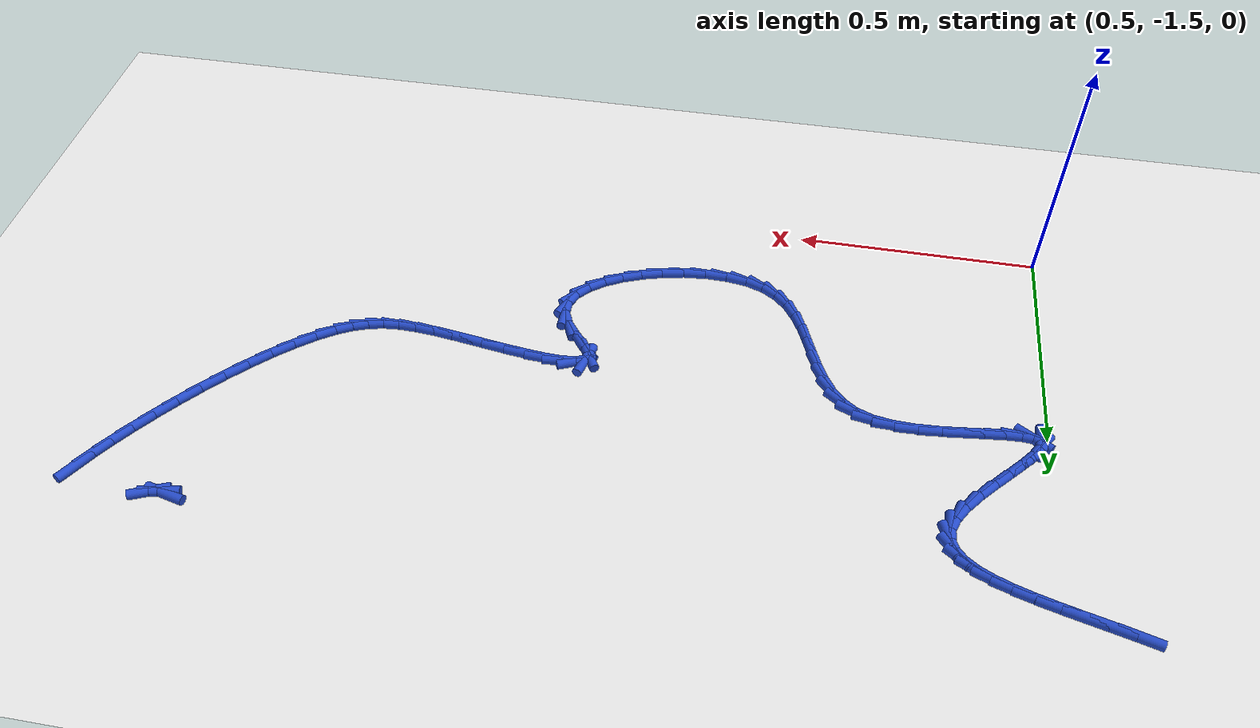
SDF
<sdf version="1.6">
 <world name="default">
  <model name="ground_plane">
   <static>1</static>
   <link name="link">
    <collision name="collision">
     <geometry><plane><normal>0 0 1</normal><size>100 100</size></plane></geometry>
     <surface><friction><ode><mu>100</mu><mu2>50</mu2></ode></friction></surface>
    </collision>
    <visual name="visual">
     <cast_shadows>0</cast_shadows>
     <geometry><plane><normal>0 0 1</normal><size>100 100</size></plane></geometry>
     <material>
      <script><uri>file://media/materials/scripts/gazebo.material</uri><name>Gazebo/WhiteGlow</name></script>
     </material>
    </visual>
   </link>
  </model>
  <model name="line">
   <link name="link_140">
    <pose>2.105179979010656 -0.5721651150920027 0.01 0 1.57 -0.23793949601526337</pose>
    <collision name="collision">
     <geometry><cylinder><radius>0.01</radius><length>0.08</length></cylinder></geometry>
    </collision>
    <visual name="visual">
     <material>
      <script><name>Gazebo/Blue</name><uri>file://media/materials/scripts/gazebo.material</uri></script>
     </material>
     <geometry><cylinder><radius>0.01</radius><length>0.08</length></cylinder></geometry>
    </visual>
   </link>
   <link name="link_141">
    <pose>2.1175998564468643 -0.5751773564092134 0.01 0 1.57 0.1820017413209658</pose>
    <collision name="collision">
     <geometry><cylinder><radius>0.01</radius><length>0.08</length></cylinder></geometry>
    </collision>
    <visual name="visual">
     <material>
      <script><name>Gazebo/Blue</name><uri>file://media/materials/scripts/gazebo.material</uri></script>
     </material>
     <geometry><cylinder><radius>0.01</radius><length>0.08</length></cylinder></geometry>
    </visual>
   </link>
   <link name="link_142">
    <pose>2.1352806098436083 -0.571923420431556 0.01 0 1.57 0.40149417424195205</pose>
    <collision name="collision">
     <geometry><cylinder><radius>0.01</radius><length>0.08</length></cylinder></geometry>
    </collision>
    <visual name="visual">
     <material>
      <script><name>Gazebo/Blue</name><uri>file://media/materials/scripts/gazebo.material</uri></script>
     </material>
     <geometry><cylinder><radius>0.01</radius><length>0.08</length></cylinder></geometry>
    </visual>
   </link>
   <link name="link_155">
    <pose>2.296649680560605 -0.6018278755899497 0.01 0 1.57 1.0571678069806698</pose>
    <collision name="collision">
     <geometry><cylinder><radius>0.01</radius><length>0.08</length></cylinder></geometry>
    </collision>
    <visual name="visual">
     <material>
      <script><name>Gazebo/Blue</name><uri>file://media/materials/scripts/gazebo.material</uri></script>
     </material>
     <geometry><cylinder><radius>0.01</radius><length>0.08</length></cylinder></geometry>
    </visual>
   </link>
   <link name="link_156">
    <pose>2.276324480648421 -0.6378570161388853 0.01 0 1.57 1.0175417736634378</pose>
    <collision name="collision">
     <geometry><cylinder><radius>0.01</radius><length>0.08</length></cylinder></geometry>
    </collision>
    <visual name="visual">
     <material>
      <script><name>Gazebo/Blue</name><uri>file://media/materials/scripts/gazebo.material</uri></script>
     </material>
     <geometry><cylinder><radius>0.01</radius><length>0.08</length></cylinder></geometry>
    </visual>
   </link>
   <link name="link_157">
    <pose>2.2525599947372994 -0.67633627343439 0.01 0 1.57 0.9836992308427317</pose>
    <collision name="collision">
     <geometry><cylinder><radius>0.01</radius><length>0.08</length></cylinder></geometry>
    </collision>
    <visual name="visual">
     <material>
      <script><name>Gazebo/Blue</name><uri>file://media/materials/scripts/gazebo.material</uri></script>
     </material>
     <geometry><cylinder><radius>0.01</radius><length>0.08</length></cylinder></geometry>
    </visual>
   </link>
   <link name="link_158">
    <pose>2.2258172592056877 -0.7165291849835262 0.01 0 1.57 0.9529194433831683</pose>
    <collision name="collision">
     <geometry><cylinder><radius>0.01</radius><length>0.08</length></cylinder></geometry>
    </collision>
    <visual name="visual">
     <material>
      <script><name>Gazebo/Blue</name><uri>file://media/materials/scripts/gazebo.material</uri></script>
     </material>
     <geometry><cylinder><radius>0.01</radius><length>0.08</length></cylinder></geometry>
    </visual>
   </link>
   <link name="link_159">
    <pose>2.1965573104320315 -0.7576992882933564 0.01 0 1.57 0.9233197467103152</pose>
    <collision name="collision">
     <geometry><cylinder><radius>0.01</radius><length>0.08</length></cylinder></geometry>
    </collision>
    <visual name="visual">
     <material>
      <script><name>Gazebo/Blue</name><uri>file://media/materials/scripts/gazebo.material</uri></script>
     </material>
     <geometry><cylinder><radius>0.01</radius><length>0.08</length></cylinder></geometry>
    </visual>
   </link>
   <link name="link_160">
    <pose>2.1652411847947786 -0.7991101208709419 0.01 0 1.57 0.8933906722215308</pose>
    <collision name="collision">
     <geometry><cylinder><radius>0.01</radius><length>0.08</length></cylinder></geometry>
    </collision>
    <visual name="visual">
     <material>
      <script><name>Gazebo/Blue</name><uri>file://media/materials/scripts/gazebo.material</uri></script>
     </material>
     <geometry><cylinder><radius>0.01</radius><length>0.08</length></cylinder></geometry>
    </visual>
   </link>
   <link name="link_161">
    <pose>2.132329918672374 -0.8400252202233447 0.01 0 1.57 0.861713320677925</pose>
    <collision name="collision">
     <geometry><cylinder><radius>0.01</radius><length>0.08</length></cylinder></geometry>
    </collision>
    <visual name="visual">
     <material>
      <script><name>Gazebo/Blue</name><uri>file://media/materials/scripts/gazebo.material</uri></script>
     </material>
     <geometry><cylinder><radius>0.01</radius><length>0.08</length></cylinder></geometry>
    </visual>
   </link>
   <link name="link_162">
    <pose>2.0982845484432655 -0.8797081238576265 0.01 0 1.57 0.8267344887665673</pose>
    <collision name="collision">
     <geometry><cylinder><radius>0.01</radius><length>0.08</length></cylinder></geometry>
    </collision>
    <visual name="visual">
     <material>
      <script><name>Gazebo/Blue</name><uri>file://media/materials/scripts/gazebo.material</uri></script>
     </material>
     <geometry><cylinder><radius>0.01</radius><length>0.08</length></cylinder></geometry>
    </visual>
   </link>
   <link name="link_163">
    <pose>2.063566110485901 -0.9174223692808495 0.01 0 1.57 0.7865227821485813</pose>
    <collision name="collision">
     <geometry><cylinder><radius>0.01</radius><length>0.08</length></cylinder></geometry>
    </collision>
    <visual name="visual">
     <material>
      <script><name>Gazebo/Blue</name><uri>file://media/materials/scripts/gazebo.material</uri></script>
     </material>
     <geometry><cylinder><radius>0.01</radius><length>0.08</length></cylinder></geometry>
    </visual>
   </link>
   <link name="link_164">
    <pose>2.0286356411787247 -0.9524314940000749 0.01 0 1.57 0.7384294195603164</pose>
    <collision name="collision">
     <geometry><cylinder><radius>0.01</radius><length>0.08</length></cylinder></geometry>
    </collision>
    <visual name="visual">
     <material>
      <script><name>Gazebo/Blue</name><uri>file://media/materials/scripts/gazebo.material</uri></script>
     </material>
     <geometry><cylinder><radius>0.01</radius><length>0.08</length></cylinder></geometry>
    </visual>
   </link>
   <link name="link_165">
    <pose>1.9939541769001847 -0.9839990355223658 0.01 0 1.57 0.6785409608132893</pose>
    <collision name="collision">
     <geometry><cylinder><radius>0.01</radius><length>0.08</length></cylinder></geometry>
    </collision>
    <visual name="visual">
     <material>
      <script><name>Gazebo/Blue</name><uri>file://media/materials/scripts/gazebo.material</uri></script>
     </material>
     <geometry><cylinder><radius>0.01</radius><length>0.08</length></cylinder></geometry>
    </visual>
   </link>
   <link name="link_166">
    <pose>1.9599827540287287 -1.011388531354782 0.01 0 1.57 0.600727831641718</pose>
    <collision name="collision">
     <geometry><cylinder><radius>0.01</radius><length>0.08</length></cylinder></geometry>
    </collision>
    <visual name="visual">
     <material>
      <script><name>Gazebo/Blue</name><uri>file://media/materials/scripts/gazebo.material</uri></script>
     </material>
     <geometry><cylinder><radius>0.01</radius><length>0.08</length></cylinder></geometry>
    </visual>
   </link>
   <link name="link_167">
    <pose>1.9271824089428025 -1.0338635190043863 0.01 0 1.57 0.4957793523024967</pose>
    <collision name="collision">
     <geometry><cylinder><radius>0.01</radius><length>0.08</length></cylinder></geometry>
    </collision>
    <visual name="visual">
     <material>
      <script><name>Gazebo/Blue</name><uri>file://media/materials/scripts/gazebo.material</uri></script>
     </material>
     <geometry><cylinder><radius>0.01</radius><length>0.08</length></cylinder></geometry>
    </visual>
   </link>
   <link name="link_168">
    <pose>1.8958686599590944 -1.0507990835375356 0.01 0 1.57 0.3625076416423904</pose>
    <collision name="collision">
     <geometry><cylinder><radius>0.01</radius><length>0.08</length></cylinder></geometry>
    </collision>
    <visual name="visual">
     <material>
      <script><name>Gazebo/Blue</name><uri>file://media/materials/scripts/gazebo.material</uri></script>
     </material>
     <geometry><cylinder><radius>0.01</radius><length>0.08</length></cylinder></geometry>
    </visual>
   </link>
   <link name="link_169">
    <pose>1.8652684082951498 -1.0624047946127368 0.01 0 1.57 0.21684952508872335</pose>
    <collision name="collision">
     <geometry><cylinder><radius>0.01</radius><length>0.08</length></cylinder></geometry>
    </collision>
    <visual name="visual">
     <material>
      <script><name>Gazebo/Blue</name><uri>file://media/materials/scripts/gazebo.material</uri></script>
     </material>
     <geometry><cylinder><radius>0.01</radius><length>0.08</length></cylinder></geometry>
    </visual>
   </link>
   <link name="link_170">
    <pose>1.834115441125358 -1.0692682207932622 0.01 0 1.57 0.08201830586210344</pose>
    <collision name="collision">
     <geometry><cylinder><radius>0.01</radius><length>0.08</length></cylinder></geometry>
    </collision>
    <visual name="visual">
     <material>
      <script><name>Gazebo/Blue</name><uri>file://media/materials/scripts/gazebo.material</uri></script>
     </material>
     <geometry><cylinder><radius>0.01</radius><length>0.08</length></cylinder></geometry>
    </visual>
   </link>
   <link name="link_171">
    <pose>1.801141106142119 -1.0719788006388535 0.01 0 1.57 -0.023642985257085514</pose>
    <collision name="collision">
     <geometry><cylinder><radius>0.01</radius><length>0.08</length></cylinder></geometry>
    </collision>
    <visual name="visual">
     <material>
      <script><name>Gazebo/Blue</name><uri>file://media/materials/scripts/gazebo.material</uri></script>
     </material>
     <geometry><cylinder><radius>0.01</radius><length>0.08</length></cylinder></geometry>
    </visual>
   </link>
   <link name="link_172">
    <pose>1.7650767510378336 -1.0711259727092526 0.01 0 1.57 -0.09438743802198654</pose>
    <collision name="collision">
     <geometry><cylinder><radius>0.01</radius><length>0.08</length></cylinder></geometry>
    </collision>
    <visual name="visual">
     <material>
      <script><name>Gazebo/Blue</name><uri>file://media/materials/scripts/gazebo.material</uri></script>
     </material>
     <geometry><cylinder><radius>0.01</radius><length>0.08</length></cylinder></geometry>
    </visual>
   </link>
   <link name="link_173">
    <pose>1.7246537255553842 -1.0672991758451467 0.01 0 1.57 -0.13404260769945905</pose>
    <collision name="collision">
     <geometry><cylinder><radius>0.01</radius><length>0.08</length></cylinder></geometry>
    </collision>
    <visual name="visual">
     <material>
      <script><name>Gazebo/Blue</name><uri>file://media/materials/scripts/gazebo.material</uri></script>
     </material>
     <geometry><cylinder><radius>0.01</radius><length>0.08</length></cylinder></geometry>
    </visual>
   </link>
   <link name="link_174">
    <pose>1.679242019568658 -1.0611753519069378 0.01 0 1.57 -0.15132588569323002</pose>
    <collision name="collision">
     <geometry><cylinder><radius>0.01</radius><length>0.08</length></cylinder></geometry>
    </collision>
    <visual name="visual">
     <material>
      <script><name>Gazebo/Blue</name><uri>file://media/materials/scripts/gazebo.material</uri></script>
     </material>
     <geometry><cylinder><radius>0.01</radius><length>0.08</length></cylinder></geometry>
    </visual>
   </link>
   <link name="link_175">
    <pose>1.6306540008418773 -1.053766084175617 0.01 0 1.57 -0.15280834782384073</pose>
    <collision name="collision">
     <geometry><cylinder><radius>0.01</radius><length>0.08</length></cylinder></geometry>
    </collision>
    <visual name="visual">
     <material>
      <script><name>Gazebo/Blue</name><uri>file://media/materials/scripts/gazebo.material</uri></script>
     </material>
     <geometry><cylinder><radius>0.01</radius><length>0.08</length></cylinder></geometry>
    </visual>
   </link>
   <link name="link_176">
    <pose>1.581285807152861 -1.0461629409449054 0.01 0 1.57 -0.13950953158006915</pose>
    <collision name="collision">
     <geometry><cylinder><radius>0.01</radius><length>0.08</length></cylinder></geometry>
    </collision>
    <visual name="visual">
     <material>
      <script><name>Gazebo/Blue</name><uri>file://media/materials/scripts/gazebo.material</uri></script>
     </material>
     <geometry><cylinder><radius>0.01</radius><length>0.08</length></cylinder></geometry>
    </visual>
   </link>
   <link name="link_177">
    <pose>1.533533576279426 -1.0394574905085232 0.01 0 1.57 -0.1074079863688208</pose>
    <collision name="collision">
     <geometry><cylinder><radius>0.01</radius><length>0.08</length></cylinder></geometry>
    </collision>
    <visual name="visual">
     <material>
      <script><name>Gazebo/Blue</name><uri>file://media/materials/scripts/gazebo.material</uri></script>
     </material>
     <geometry><cylinder><radius>0.01</radius><length>0.08</length></cylinder></geometry>
    </visual>
   </link>
   <link name="link_178">
    <pose>1.4897934459993918 -1.034741301160192 0.01 0 1.57 -0.043777987676942416</pose>
    <collision name="collision">
     <geometry><cylinder><radius>0.01</radius><length>0.08</length></cylinder></geometry>
    </collision>
    <visual name="visual">
     <material>
      <script><name>Gazebo/Blue</name><uri>file://media/materials/scripts/gazebo.material</uri></script>
     </material>
     <geometry><cylinder><radius>0.01</radius><length>0.08</length></cylinder></geometry>
    </visual>
   </link>
   <link name="link_179">
    <pose>1.4524615540905756 -1.0331059411936323 0.01 0 1.57 0.08869965222049406</pose>
    <collision name="collision">
     <geometry><cylinder><radius>0.01</radius><length>0.08</length></cylinder></geometry>
    </collision>
    <visual name="visual">
     <material>
      <script><name>Gazebo/Blue</name><uri>file://media/materials/scripts/gazebo.material</uri></script>
     </material>
     <geometry><cylinder><radius>0.01</radius><length>0.08</length></cylinder></geometry>
    </visual>
   </link>
   <link name="link_180">
    <pose>1.4239340383307957 -1.0356429789025645 0.01 0 1.57 0.42303882652330677</pose>
    <collision name="collision">
     <geometry><cylinder><radius>0.01</radius><length>0.08</length></cylinder></geometry>
    </collision>
    <visual name="visual">
     <material>
      <script><name>Gazebo/Blue</name><uri>file://media/materials/scripts/gazebo.material</uri></script>
     </material>
     <geometry><cylinder><radius>0.01</radius><length>0.08</length></cylinder></geometry>
    </visual>
   </link>
   <link name="link_181">
    <pose>1.4066070364978696 -1.0434439825807094 0.01 0 1.57 1.313145928083948</pose>
    <collision name="collision">
     <geometry><cylinder><radius>0.01</radius><length>0.08</length></cylinder></geometry>
    </collision>
    <visual name="visual">
     <material>
      <script><name>Gazebo/Blue</name><uri>file://media/materials/scripts/gazebo.material</uri></script>
     </material>
     <geometry><cylinder><radius>0.01</radius><length>0.08</length></cylinder></geometry>
    </visual>
   </link>
   <link name="link_182">
    <pose>1.4028766863696172 -1.0576005205217884 0.01 0 1.57 -1.0712151454381824</pose>
    <collision name="collision">
     <geometry><cylinder><radius>0.01</radius><length>0.08</length></cylinder></geometry>
    </collision>
    <visual name="visual">
     <material>
      <script><name>Gazebo/Blue</name><uri>file://media/materials/scripts/gazebo.material</uri></script>
     </material>
     <geometry><cylinder><radius>0.01</radius><length>0.08</length></cylinder></geometry>
    </visual>
   </link>
   <link name="link_183">
    <pose>1.4145689865664581 -1.0790244539206129 0.01 0 1.57 -0.8959948624635726</pose>
    <collision name="collision">
     <geometry><cylinder><radius>0.01</radius><length>0.08</length></cylinder></geometry>
    </collision>
    <visual name="visual">
     <material>
      <script><name>Gazebo/Blue</name><uri>file://media/materials/scripts/gazebo.material</uri></script>
     </material>
     <geometry><cylinder><radius>0.01</radius><length>0.08</length></cylinder></geometry>
    </visual>
   </link>
   <link name="link_184">
    <pose>1.4364821342986063 -1.1064124903787875 0.01 0 1.57 -0.9424909075243059</pose>
    <collision name="collision">
     <geometry><cylinder><radius>0.01</radius><length>0.08</length></cylinder></geometry>
    </collision>
    <visual name="visual">
     <material>
      <script><name>Gazebo/Blue</name><uri>file://media/materials/scripts/gazebo.material</uri></script>
     </material>
     <geometry><cylinder><radius>0.01</radius><length>0.08</length></cylinder></geometry>
    </visual>
   </link>
   <link name="link_185">
    <pose>1.4586828365506337 -1.136969978114978 0.01 0 1.57 -1.1789918863773783</pose>
    <collision name="collision">
     <geometry><cylinder><radius>0.01</radius><length>0.08</length></cylinder></geometry>
    </collision>
    <visual name="visual">
     <material>
      <script><name>Gazebo/Blue</name><uri>file://media/materials/scripts/gazebo.material</uri></script>
     </material>
     <geometry><cylinder><radius>0.01</radius><length>0.08</length></cylinder></geometry>
    </visual>
   </link>
   <link name="link_186">
    <pose>1.4714790516488838 -1.1679411153645798 0.01 0 1.57 1.5601531594736158</pose>
    <collision name="collision">
     <geometry><cylinder><radius>0.01</radius><length>0.08</length></cylinder></geometry>
    </collision>
    <visual name="visual">
     <material>
      <script><name>Gazebo/Blue</name><uri>file://media/materials/scripts/gazebo.material</uri></script>
     </material>
     <geometry><cylinder><radius>0.01</radius><length>0.08</length></cylinder></geometry>
    </visual>
   </link>
   <link name="link_187">
    <pose>1.471161454147479 -1.1977804948991067 0.01 0 1.57 1.1708089965836375</pose>
    <collision name="collision">
     <geometry><cylinder><radius>0.01</radius><length>0.08</length></cylinder></geometry>
    </collision>
    <visual name="visual">
     <material>
      <script><name>Gazebo/Blue</name><uri>file://media/materials/scripts/gazebo.material</uri></script>
     </material>
     <geometry><cylinder><radius>0.01</radius><length>0.08</length></cylinder></geometry>
    </visual>
   </link>
   <link name="link_188">
    <pose>1.4592321063239673 -1.2259970525319068 0.01 0 1.57 0.8741837809065285</pose>
    <collision name="collision">
     <geometry><cylinder><radius>0.01</radius><length>0.08</length></cylinder></geometry>
    </collision>
    <visual name="visual">
     <material>
      <script><name>Gazebo/Blue</name><uri>file://media/materials/scripts/gazebo.material</uri></script>
     </material>
     <geometry><cylinder><radius>0.01</radius><length>0.08</length></cylinder></geometry>
    </visual>
   </link>
   <link name="link_189">
    <pose>1.4373673561641844 -1.2521349847273413 0.01 0 1.57 0.6646295811823272</pose>
    <collision name="collision">
     <geometry><cylinder><radius>0.01</radius><length>0.08</length></cylinder></geometry>
    </collision>
    <visual name="visual">
     <material>
      <script><name>Gazebo/Blue</name><uri>file://media/materials/scripts/gazebo.material</uri></script>
     </material>
     <geometry><cylinder><radius>0.01</radius><length>0.08</length></cylinder></geometry>
    </visual>
   </link>
   <link name="link_190">
    <pose>1.4072435516539652 -1.2757384879497737 0.01 0 1.57 0.511682615496044</pose>
    <collision name="collision">
     <geometry><cylinder><radius>0.01</radius><length>0.08</length></cylinder></geometry>
    </collision>
    <visual name="visual">
     <material>
      <script><name>Gazebo/Blue</name><uri>file://media/materials/scripts/gazebo.material</uri></script>
     </material>
     <geometry><cylinder><radius>0.01</radius><length>0.08</length></cylinder></geometry>
    </visual>
   </link>
   <link name="link_191">
    <pose>1.3705370407791455 -1.2963517586635676 0.01 0 1.57 0.3912751340708561</pose>
    <collision name="collision">
     <geometry><cylinder><radius>0.01</radius><length>0.08</length></cylinder></geometry>
    </collision>
    <visual name="visual">
     <material>
      <script><name>Gazebo/Blue</name><uri>file://media/materials/scripts/gazebo.material</uri></script>
     </material>
     <geometry><cylinder><radius>0.01</radius><length>0.08</length></cylinder></geometry>
    </visual>
   </link>
   <link name="link_192">
    <pose>1.32892417152556 -1.313518993333085 0.01 0 1.57 0.28761700974705295</pose>
    <collision name="collision">
     <geometry><cylinder><radius>0.01</radius><length>0.08</length></cylinder></geometry>
    </collision>
    <visual name="visual">
     <material>
      <script><name>Gazebo/Blue</name><uri>file://media/materials/scripts/gazebo.material</uri></script>
     </material>
     <geometry><cylinder><radius>0.01</radius><length>0.08</length></cylinder></geometry>
    </visual>
   </link>
   <link name="link_193">
    <pose>1.2840812918790436 -1.3267843884226893 0.01 0 1.57 0.18968356770424302</pose>
    <collision name="collision">
     <geometry><cylinder><radius>0.01</radius><length>0.08</length></cylinder></geometry>
    </collision>
    <visual name="visual">
     <material>
      <script><name>Gazebo/Blue</name><uri>file://media/materials/scripts/gazebo.material</uri></script>
     </material>
     <geometry><cylinder><radius>0.01</radius><length>0.08</length></cylinder></geometry>
    </visual>
   </link>
   <link name="link_194">
    <pose>1.2376847498254324 -1.3356921403967439 0.01 0 1.57 0.0882500658793429</pose>
    <collision name="collision">
     <geometry><cylinder><radius>0.01</radius><length>0.08</length></cylinder></geometry>
    </collision>
    <visual name="visual">
     <material>
      <script><name>Gazebo/Blue</name><uri>file://media/materials/scripts/gazebo.material</uri></script>
     </material>
     <geometry><cylinder><radius>0.01</radius><length>0.08</length></cylinder></geometry>
    </visual>
   </link>
   <link name="link_195">
    <pose>1.1914108933505614 -1.339786445719611 0.01 0 1.57 -0.026412058818253183</pose>
    <collision name="collision">
     <geometry><cylinder><radius>0.01</radius><length>0.08</length></cylinder></geometry>
    </collision>
    <visual name="visual">
     <material>
      <script><name>Gazebo/Blue</name><uri>file://media/materials/scripts/gazebo.material</uri></script>
     </material>
     <geometry><cylinder><radius>0.01</radius><length>0.08</length></cylinder></geometry>
    </visual>
   </link>
   <link name="link_196">
    <pose>1.1469360704402656 -1.3386115008556534 0.01 0 1.57 -0.16673252531788865</pose>
    <collision name="collision">
     <geometry><cylinder><radius>0.01</radius><length>0.08</length></cylinder></geometry>
    </collision>
    <visual name="visual">
     <material>
      <script><name>Gazebo/Blue</name><uri>file://media/materials/scripts/gazebo.material</uri></script>
     </material>
     <geometry><cylinder><radius>0.01</radius><length>0.08</length></cylinder></geometry>
    </visual>
   </link>
   <link name="link_197">
    <pose>1.1059366290803792 -1.3317115022692345 0.01 0 1.57 -0.3498872439010376</pose>
    <collision name="collision">
     <geometry><cylinder><radius>0.01</radius><length>0.08</length></cylinder></geometry>
    </collision>
    <visual name="visual">
     <material>
      <script><name>Gazebo/Blue</name><uri>file://media/materials/scripts/gazebo.material</uri></script>
     </material>
     <geometry><cylinder><radius>0.01</radius><length>0.08</length></cylinder></geometry>
    </visual>
   </link>
   <link name="link_198">
    <pose>1.0700889172567396 -1.318630646424717 0.01 0 1.57 -0.5859436502699192</pose>
    <collision name="collision">
     <geometry><cylinder><radius>0.01</radius><length>0.08</length></cylinder></geometry>
    </collision>
    <visual name="visual">
     <material>
      <script><name>Gazebo/Blue</name><uri>file://media/materials/scripts/gazebo.material</uri></script>
     </material>
     <geometry><cylinder><radius>0.01</radius><length>0.08</length></cylinder></geometry>
    </visual>
   </link>
   <link name="link_199">
    <pose>1.040701014448468 -1.299125992442181 0.01 0 1.57 -0.8167906723345729</pose>
    <collision name="collision">
     <geometry><cylinder><radius>0.01</radius><length>0.08</length></cylinder></geometry>
    </collision>
    <visual name="visual">
     <material>
      <script><name>Gazebo/Blue</name><uri>file://media/materials/scripts/gazebo.material</uri></script>
     </material>
     <geometry><cylinder><radius>0.01</radius><length>0.08</length></cylinder></geometry>
    </visual>
   </link>
   <link name="link_200">
    <pose>1.0171639084076092 -1.2740626964655881 0.01 0 1.57 -0.9990050580834717</pose>
    <collision name="collision">
     <geometry><cylinder><radius>0.01</radius><length>0.08</length></cylinder></geometry>
    </collision>
    <visual name="visual">
     <material>
      <script><name>Gazebo/Blue</name><uri>file://media/materials/scripts/gazebo.material</uri></script>
     </material>
     <geometry><cylinder><radius>0.01</radius><length>0.08</length></cylinder></geometry>
    </visual>
   </link>
   <link name="link_201">
    <pose>0.9982467503663958 -1.244665341987742 0.01 0 1.57 -1.1251483485010538</pose>
    <collision name="collision">
     <geometry><cylinder><radius>0.01</radius><length>0.08</length></cylinder></geometry>
    </collision>
    <visual name="visual">
     <material>
      <script><name>Gazebo/Blue</name><uri>file://media/materials/scripts/gazebo.material</uri></script>
     </material>
     <geometry><cylinder><radius>0.01</radius><length>0.08</length></cylinder></geometry>
    </visual>
   </link>
   <link name="link_202">
    <pose>0.9827183676571567 -1.2121586997186296 0.01 0 1.57 -1.1999949501031444</pose>
    <collision name="collision">
     <geometry><cylinder><radius>0.01</radius><length>0.08</length></cylinder></geometry>
    </collision>
    <visual name="visual">
     <material>
      <script><name>Gazebo/Blue</name><uri>file://media/materials/scripts/gazebo.material</uri></script>
     </material>
     <geometry><cylinder><radius>0.01</radius><length>0.08</length></cylinder></geometry>
    </visual>
   </link>
   <link name="link_203">
    <pose>0.9693475876122222 -1.1777675403682384 0.01 0 1.57 -1.2296417341150676</pose>
    <collision name="collision">
     <geometry><cylinder><radius>0.01</radius><length>0.08</length></cylinder></geometry>
    </collision>
    <visual name="visual">
     <material>
      <script><name>Gazebo/Blue</name><uri>file://media/materials/scripts/gazebo.material</uri></script>
     </material>
     <geometry><cylinder><radius>0.01</radius><length>0.08</length></cylinder></geometry>
    </visual>
   </link>
   <link name="link_204">
    <pose>0.9569032375639219 -1.142716634646556 0.01 0 1.57 -1.2166889220110102</pose>
    <collision name="collision">
     <geometry><cylinder><radius>0.01</radius><length>0.08</length></cylinder></geometry>
    </collision>
    <visual name="visual">
     <material>
      <script><name>Gazebo/Blue</name><uri>file://media/materials/scripts/gazebo.material</uri></script>
     </material>
     <geometry><cylinder><radius>0.01</radius><length>0.08</length></cylinder></geometry>
    </visual>
   </link>
   <link name="link_205">
    <pose>0.9441541448445866 -1.1082307532635718 0.01 0 1.57 -1.1588873442234047</pose>
    <collision name="collision">
     <geometry><cylinder><radius>0.01</radius><length>0.08</length></cylinder></geometry>
    </collision>
    <visual name="visual">
     <material>
      <script><name>Gazebo/Blue</name><uri>file://media/materials/scripts/gazebo.material</uri></script>
     </material>
     <geometry><cylinder><radius>0.01</radius><length>0.08</length></cylinder></geometry>
    </visual>
   </link>
   <link name="link_206">
    <pose>0.9298691367865453 -1.0755346669292727 0.01 0 1.57 -1.0493363084351768</pose>
    <collision name="collision">
     <geometry><cylinder><radius>0.01</radius><length>0.08</length></cylinder></geometry>
    </collision>
    <visual name="visual">
     <material>
      <script><name>Gazebo/Blue</name><uri>file://media/materials/scripts/gazebo.material</uri></script>
     </material>
     <geometry><cylinder><radius>0.01</radius><length>0.08</length></cylinder></geometry>
    </visual>
   </link>
   <link name="link_207">
    <pose>0.9128170407221284 -1.0458531463536465 0.01 0 1.57 -0.879581738530847</pose>
    <collision name="collision">
     <geometry><cylinder><radius>0.01</radius><length>0.08</length></cylinder></geometry>
    </collision>
    <visual name="visual">
     <material>
      <script><name>Gazebo/Blue</name><uri>file://media/materials/scripts/gazebo.material</uri></script>
     </material>
     <geometry><cylinder><radius>0.01</radius><length>0.08</length></cylinder></geometry>
    </visual>
   </link>
   <link name="link_208">
    <pose>0.8917666839836657 -1.020410962246681 0.01 0 1.57 -0.6500015651174077</pose>
    <collision name="collision">
     <geometry><cylinder><radius>0.01</radius><length>0.08</length></cylinder></geometry>
    </collision>
    <visual name="visual">
     <material>
      <script><name>Gazebo/Blue</name><uri>file://media/materials/scripts/gazebo.material</uri></script>
     </material>
     <geometry><cylinder><radius>0.01</radius><length>0.08</length></cylinder></geometry>
    </visual>
   </link>
   <link name="link_209">
    <pose>0.8654868939034869 -1.0004328853183642 0.01 0 1.57 -0.3872239318410194</pose>
    <collision name="collision">
     <geometry><cylinder><radius>0.01</radius><length>0.08</length></cylinder></geometry>
    </collision>
    <visual name="visual">
     <material>
      <script><name>Gazebo/Blue</name><uri>file://media/materials/scripts/gazebo.material</uri></script>
     </material>
     <geometry><cylinder><radius>0.01</radius><length>0.08</length></cylinder></geometry>
    </visual>
   </link>
   <link name="link_210">
    <pose>0.8327979655583768 -0.9871018998233687 0.01 0 1.57 -0.17172668403186123</pose>
    <collision name="collision">
     <geometry><cylinder><radius>0.01</radius><length>0.08</length></cylinder></geometry>
    </collision>
    <visual name="visual">
     <material>
      <script><name>Gazebo/Blue</name><uri>file://media/materials/scripts/gazebo.material</uri></script>
     </material>
     <geometry><cylinder><radius>0.01</radius><length>0.08</length></cylinder></geometry>
    </visual>
   </link>
   <link name="link_211">
    <pose>0.7940269589231373 -0.9803776536384307 0.01 0 1.57 -0.036128667800211824</pose>
    <collision name="collision">
     <geometry><cylinder><radius>0.01</radius><length>0.08</length></cylinder></geometry>
    </collision>
    <visual name="visual">
     <material>
      <script><name>Gazebo/Blue</name><uri>file://media/materials/scripts/gazebo.material</uri></script>
     </material>
     <geometry><cylinder><radius>0.01</radius><length>0.08</length></cylinder></geometry>
    </visual>
   </link>
   <link name="link_212">
    <pose>0.751212535539367 -0.9788301521924521 0.01 0 1.57 0.04745364237493785</pose>
    <collision name="collision">
     <geometry><cylinder><radius>0.01</radius><length>0.08</length></cylinder></geometry>
    </collision>
    <visual name="visual">
     <material>
      <script><name>Gazebo/Blue</name><uri>file://media/materials/scripts/gazebo.material</uri></script>
     </material>
     <geometry><cylinder><radius>0.01</radius><length>0.08</length></cylinder></geometry>
    </visual>
   </link>
   <link name="link_213">
    <pose>0.706486000793118 -0.9809541837485626 0.01 0 1.57 0.09609959365266835</pose>
    <collision name="collision">
     <geometry><cylinder><radius>0.01</radius><length>0.08</length></cylinder></geometry>
    </collision>
    <visual name="visual">
     <material>
      <script><name>Gazebo/Blue</name><uri>file://media/materials/scripts/gazebo.material</uri></script>
     </material>
     <geometry><cylinder><radius>0.01</radius><length>0.08</length></cylinder></geometry>
    </visual>
   </link>
   <link name="link_214">
    <pose>0.6619786600704465 -0.9852445365698909 0.01 0 1.57 0.11691767856138165</pose>
    <collision name="collision">
     <geometry><cylinder><radius>0.01</radius><length>0.08</length></cylinder></geometry>
    </collision>
    <visual name="visual">
     <material>
      <script><name>Gazebo/Blue</name><uri>file://media/materials/scripts/gazebo.material</uri></script>
     </material>
     <geometry><cylinder><radius>0.01</radius><length>0.08</length></cylinder></geometry>
    </visual>
   </link>
   <link name="link_215">
    <pose>0.6198218187574045 -0.9901959989195662 0.01 0 1.57 0.10859186571659465</pose>
    <collision name="collision">
     <geometry><cylinder><radius>0.01</radius><length>0.08</length></cylinder></geometry>
    </collision>
    <visual name="visual">
     <material>
      <script><name>Gazebo/Blue</name><uri>file://media/materials/scripts/gazebo.material</uri></script>
     </material>
     <geometry><cylinder><radius>0.01</radius><length>0.08</length></cylinder></geometry>
    </visual>
   </link>
   <link name="link_216">
    <pose>0.5821467822400461 -0.9943033590607179 0.01 0 1.57 0.05653778734504626</pose>
    <collision name="collision">
     <geometry><cylinder><radius>0.01</radius><length>0.08</length></cylinder></geometry>
    </collision>
    <visual name="visual">
     <material>
      <script><name>Gazebo/Blue</name><uri>file://media/materials/scripts/gazebo.material</uri></script>
     </material>
     <geometry><cylinder><radius>0.01</radius><length>0.08</length></cylinder></geometry>
    </visual>
   </link>
   <link name="link_217">
    <pose>0.5510848559044247 -0.9960614052564752 0.01 0 1.57 -0.09366390212989995</pose>
    <collision name="collision">
     <geometry><cylinder><radius>0.01</radius><length>0.08</length></cylinder></geometry>
    </collision>
    <visual name="visual">
     <material>
      <script><name>Gazebo/Blue</name><uri>file://media/materials/scripts/gazebo.material</uri></script>
     </material>
     <geometry><cylinder><radius>0.01</radius><length>0.08</length></cylinder></geometry>
    </visual>
   </link>
   <link name="link_218">
    <pose>0.528767345136594 -0.9939649257699675 0.01 0 1.57 -0.577544985504021</pose>
    <collision name="collision">
     <geometry><cylinder><radius>0.01</radius><length>0.08</length></cylinder></geometry>
    </collision>
    <visual name="visual">
     <material>
      <script><name>Gazebo/Blue</name><uri>file://media/materials/scripts/gazebo.material</uri></script>
     </material>
     <geometry><cylinder><radius>0.01</radius><length>0.08</length></cylinder></geometry>
    </visual>
   </link>
   <link name="link_219">
    <pose>0.5173255553226072 -0.9865087088643238 0.01 0 1.57 1.484179292225179</pose>
    <collision name="collision">
     <geometry><cylinder><radius>0.01</radius><length>0.08</length></cylinder></geometry>
    </collision>
    <visual name="visual">
     <material>
      <script><name>Gazebo/Blue</name><uri>file://media/materials/scripts/gazebo.material</uri></script>
     </material>
     <geometry><cylinder><radius>0.01</radius><length>0.08</length></cylinder></geometry>
    </visual>
   </link>
   <link name="link_220">
    <pose>0.5185526639593862 -0.972377097128837 0.01 0 1.57 1.0174867671690548</pose>
    <collision name="collision">
     <geometry><cylinder><radius>0.01</radius><length>0.08</length></cylinder></geometry>
    </collision>
    <visual name="visual">
     <material>
      <script><name>Gazebo/Blue</name><uri>file://media/materials/scripts/gazebo.material</uri></script>
     </material>
     <geometry><cylinder><radius>0.01</radius><length>0.08</length></cylinder></geometry>
    </visual>
   </link>
   <link name="link_221">
    <pose>0.5311446931387581 -0.9519906969296346 0.01 0 1.57 0.878006509609779</pose>
    <collision name="collision">
     <geometry><cylinder><radius>0.01</radius><length>0.08</length></cylinder></geometry>
    </collision>
    <visual name="visual">
     <material>
      <script><name>Gazebo/Blue</name><uri>file://media/materials/scripts/gazebo.material</uri></script>
     </material>
     <geometry><cylinder><radius>0.01</radius><length>0.08</length></cylinder></geometry>
    </visual>
   </link>
   <link name="link_222">
    <pose>0.5521351520701929 -0.9267021185262895 0.01 0 1.57 0.8292317798657994</pose>
    <collision name="collision">
     <geometry><cylinder><radius>0.01</radius><length>0.08</length></cylinder></geometry>
    </collision>
    <visual name="visual">
     <material>
      <script><name>Gazebo/Blue</name><uri>file://media/materials/scripts/gazebo.material</uri></script>
     </material>
     <geometry><cylinder><radius>0.01</radius><length>0.08</length></cylinder></geometry>
    </visual>
   </link>
   <link name="link_223">
    <pose>0.5785416523654763 -0.8978728843637156 0.01 0 1.57 0.8216106935549433</pose>
    <collision name="collision">
     <geometry><cylinder><radius>0.01</radius><length>0.08</length></cylinder></geometry>
    </collision>
    <visual name="visual">
     <material>
      <script><name>Gazebo/Blue</name><uri>file://media/materials/scripts/gazebo.material</uri></script>
     </material>
     <geometry><cylinder><radius>0.01</radius><length>0.08</length></cylinder></geometry>
    </visual>
   </link>
   <link name="link_224">
    <pose>0.6073818056363934 -0.8668645168868263 0.01 0 1.57 0.8441248617572008</pose>
    <collision name="collision">
     <geometry><cylinder><radius>0.01</radius><length>0.08</length></cylinder></geometry>
    </collision>
    <visual name="visual">
     <material>
      <script><name>Gazebo/Blue</name><uri>file://media/materials/scripts/gazebo.material</uri></script>
     </material>
     <geometry><cylinder><radius>0.01</radius><length>0.08</length></cylinder></geometry>
    </visual>
   </link>
   <link name="link_225">
    <pose>0.6356732234947302 -0.8350385385405353 0.01 0 1.57 0.9012492660411208</pose>
    <collision name="collision">
     <geometry><cylinder><radius>0.01</radius><length>0.08</length></cylinder></geometry>
    </collision>
    <visual name="visual">
     <material>
      <script><name>Gazebo/Blue</name><uri>file://media/materials/scripts/gazebo.material</uri></script>
     </material>
     <geometry><cylinder><radius>0.01</radius><length>0.08</length></cylinder></geometry>
    </visual>
   </link>
   <link name="link_226">
    <pose>0.6604335175522718 -0.8037564717697561 0.01 0 1.57 1.0149829574733271</pose>
    <collision name="collision">
     <geometry><cylinder><radius>0.01</radius><length>0.08</length></cylinder></geometry>
    </collision>
    <visual name="visual">
     <material>
      <script><name>Gazebo/Blue</name><uri>file://media/materials/scripts/gazebo.material</uri></script>
     </material>
     <geometry><cylinder><radius>0.01</radius><length>0.08</length></cylinder></geometry>
    </visual>
   </link>
   <link name="link_227">
    <pose>0.6786802994208044 -0.7743798390194027 0.01 0 1.57 1.2327730085252584</pose>
    <collision name="collision">
     <geometry><cylinder><radius>0.01</radius><length>0.08</length></cylinder></geometry>
    </collision>
    <visual name="visual">
     <material>
      <script><name>Gazebo/Blue</name><uri>file://media/materials/scripts/gazebo.material</uri></script>
     </material>
     <geometry><cylinder><radius>0.01</radius><length>0.08</length></cylinder></geometry>
    </visual>
   </link>
   <link name="link_228">
    <pose>0.6879382840852144 -0.7480424129710139 0.01 0 1.57 1.5576631363580797</pose>
    <collision name="collision">
     <geometry><cylinder><radius>0.01</radius><length>0.08</length></cylinder></geometry>
    </collision>
    <visual name="visual">
     <material>
      <script><name>Gazebo/Blue</name><uri>file://media/materials/scripts/gazebo.material</uri></script>
     </material>
     <geometry><cylinder><radius>0.01</radius><length>0.08</length></cylinder></geometry>
    </visual>
   </link>
   <link name="link_229">
    <pose>0.6882442083960485 -0.7247497695402576 0.01 0 1.57 -1.2072926389026937</pose>
    <collision name="collision">
     <geometry><cylinder><radius>0.01</radius><length>0.08</length></cylinder></geometry>
    </collision>
    <visual name="visual">
     <material>
      <script><name>Gazebo/Blue</name><uri>file://media/materials/scripts/gazebo.material</uri></script>
     </material>
     <geometry><cylinder><radius>0.01</radius><length>0.08</length></cylinder></geometry>
    </visual>
   </link>
   <link name="link_230">
    <pose>0.6804112266611633 -0.7041587808053569 0.01 0 1.57 -0.8772016536729276</pose>
    <collision name="collision">
     <geometry><cylinder><radius>0.01</radius><length>0.08</length></cylinder></geometry>
    </collision>
    <visual name="visual">
     <material>
      <script><name>Gazebo/Blue</name><uri>file://media/materials/scripts/gazebo.material</uri></script>
     </material>
     <geometry><cylinder><radius>0.01</radius><length>0.08</length></cylinder></geometry>
    </visual>
   </link>
   <link name="link_231">
    <pose>0.6652527202908092 -0.6859262168485319 0.01 0 1.57 -0.6424483681287947</pose>
    <collision name="collision">
     <geometry><cylinder><radius>0.01</radius><length>0.08</length></cylinder></geometry>
    </collision>
    <visual name="visual">
     <material>
      <script><name>Gazebo/Blue</name><uri>file://media/materials/scripts/gazebo.material</uri></script>
     </material>
     <geometry><cylinder><radius>0.01</radius><length>0.08</length></cylinder></geometry>
    </visual>
   </link>
   <link name="link_232">
    <pose>0.6435820706952353 -0.669708847752004 0.01 0 1.57 -0.4884879355814651</pose>
    <collision name="collision">
     <geometry><cylinder><radius>0.01</radius><length>0.08</length></cylinder></geometry>
    </collision>
    <visual name="visual">
     <material>
      <script><name>Gazebo/Blue</name><uri>file://media/materials/scripts/gazebo.material</uri></script>
     </material>
     <geometry><cylinder><radius>0.01</radius><length>0.08</length></cylinder></geometry>
    </visual>
   </link>
   <link name="link_233">
    <pose>0.6162126592846916 -0.655163443597994 0.01 0 1.57 -0.3888903087154159</pose>
    <collision name="collision">
     <geometry><cylinder><radius>0.01</radius><length>0.08</length></cylinder></geometry>
    </collision>
    <visual name="visual">
     <material>
      <script><name>Gazebo/Blue</name><uri>file://media/materials/scripts/gazebo.material</uri></script>
     </material>
     <geometry><cylinder><radius>0.01</radius><length>0.08</length></cylinder></geometry>
    </visual>
   </link>
   <link name="link_234">
    <pose>0.5839578674694276 -0.6419467744687228 0.01 0 1.57 -0.32477584513384067</pose>
    <collision name="collision">
     <geometry><cylinder><radius>0.01</radius><length>0.08</length></cylinder></geometry>
    </collision>
    <visual name="visual">
     <material>
      <script><name>Gazebo/Blue</name><uri>file://media/materials/scripts/gazebo.material</uri></script>
     </material>
     <geometry><cylinder><radius>0.01</radius><length>0.08</length></cylinder></geometry>
    </visual>
   </link>
   <link name="link_235">
    <pose>0.547631076659693 -0.6297156104464116 0.01 0 1.57 -0.28479828006053937</pose>
    <collision name="collision">
     <geometry><cylinder><radius>0.01</radius><length>0.08</length></cylinder></geometry>
    </collision>
    <visual name="visual">
     <material>
      <script><name>Gazebo/Blue</name><uri>file://media/materials/scripts/gazebo.material</uri></script>
     </material>
     <geometry><cylinder><radius>0.01</radius><length>0.08</length></cylinder></geometry>
    </visual>
   </link>
   <link name="link_236">
    <pose>0.5080456682657365 -0.6181267216132807 0.01 0 1.57 -0.2624156529700579</pose>
    <collision name="collision">
     <geometry><cylinder><radius>0.01</radius><length>0.08</length></cylinder></geometry>
    </collision>
    <visual name="visual">
     <material>
      <script><name>Gazebo/Blue</name><uri>file://media/materials/scripts/gazebo.material</uri></script>
     </material>
     <geometry><cylinder><radius>0.01</radius><length>0.08</length></cylinder></geometry>
    </visual>
   </link>
   <link name="link_237">
    <pose>0.4660150236978097 -0.606836878051552 0.01 0 1.57 -0.25397711513745946</pose>
    <collision name="collision">
     <geometry><cylinder><radius>0.01</radius><length>0.08</length></cylinder></geometry>
    </collision>
    <visual name="visual">
     <material>
      <script><name>Gazebo/Blue</name><uri>file://media/materials/scripts/gazebo.material</uri></script>
     </material>
     <geometry><cylinder><radius>0.01</radius><length>0.08</length></cylinder></geometry>
    </visual>
   </link>
   <link name="link_238">
    <pose>0.4223525243661618 -0.5955028498434458 0.01 0 1.57 -0.2576584875047691</pose>
    <collision name="collision">
     <geometry><cylinder><radius>0.01</radius><length>0.08</length></cylinder></geometry>
    </collision>
    <visual name="visual">
     <material>
      <script><name>Gazebo/Blue</name><uri>file://media/materials/scripts/gazebo.material</uri></script>
     </material>
     <geometry><cylinder><radius>0.01</radius><length>0.08</length></cylinder></geometry>
    </visual>
   </link>
   <link name="link_239">
    <pose>0.3778715516810419 -0.5837814070711838 0.01 0 1.57 -0.27292509624390465</pose>
    <collision name="collision">
     <geometry><cylinder><radius>0.01</radius><length>0.08</length></cylinder></geometry>
    </collision>
    <visual name="visual">
     <material>
      <script><name>Gazebo/Blue</name><uri>file://media/materials/scripts/gazebo.material</uri></script>
     </material>
     <geometry><cylinder><radius>0.01</radius><length>0.08</length></cylinder></geometry>
    </visual>
   </link>
  </model>
 </world>
</sdf>
